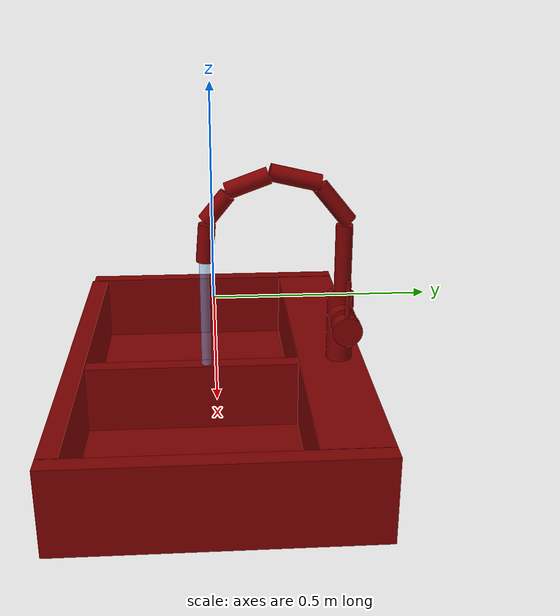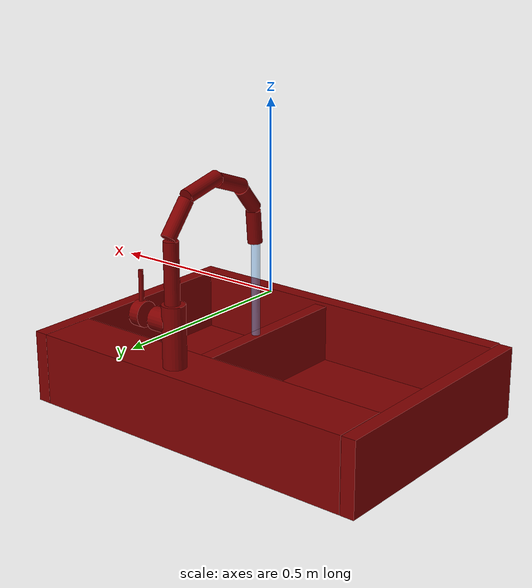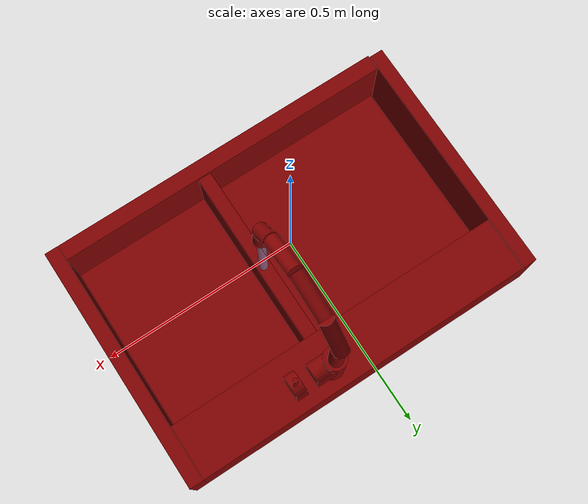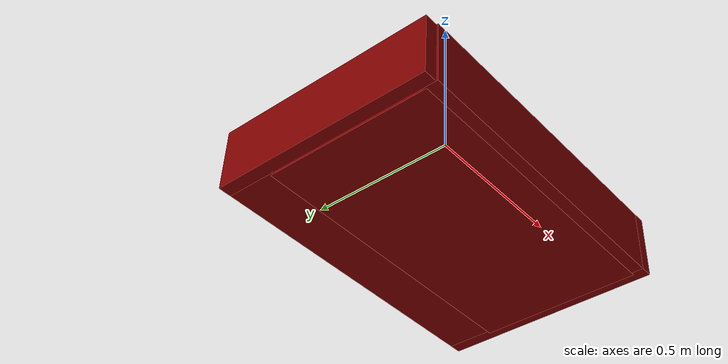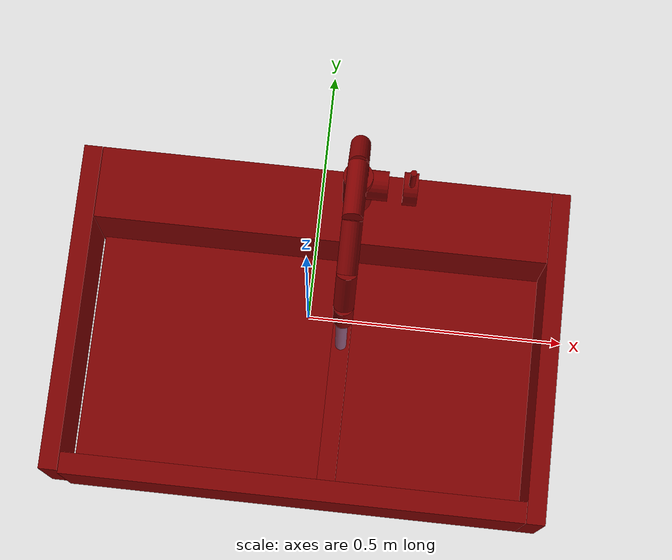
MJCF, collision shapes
<?xml version='1.0' encoding='UTF-8'?>
<mujoco model="model">
  <option timestep="0.002" gravity="0.0 0.0 -9.81"/>
  <compiler angle="radian"/>
  <asset>
    <mesh file="visuals/handle.obj" name="handle_vis"/>
    <mesh file="visuals/Body001.obj" name="Body001_vis"/>
    <mesh file="visuals/spout.obj" name="spout_vis"/>
    <texture file="visuals/T_BC001.png" name="Body001_material" type="2d"/>
    <material name="Body001_material" rgba="1 1 1 1.0" texture="Body001_material" shininess="0.228035569190979" specular="0.8"/>
    <texture file="visuals/T_BC001.png" name="handle_material" type="2d"/>
    <material name="handle_material" rgba="1 1 1 1.0" texture="handle_material" shininess="0.228035569190979" specular="0.8"/>
    <texture file="visuals/T_BC001.png" name="spout_material" type="2d"/>
    <material name="spout_material" rgba="1 1 1 1.0" texture="spout_material" shininess="0.228035569190979" specular="0.8"/>
  </asset>
  <default>
    <default class="visual">
      <geom conaffinity="0" contype="0" group="1" type="mesh"/>
    </default>
    <default class="collision">
      <geom group="0" rgba="0.5 0 0 0.5" solimp="0.998 0.998 0.001" solref="0.001 2"/>
    </default>
    <default class="spawn">
      <geom group="0" rgba="1 1 1 0.5" contype="0" conaffinity="0"/>
      <site group="0" rgba="1 1 1 0.5"/>
    </default>
    <default class="region">
      <geom group="1" conaffinity="0" contype="0" rgba="0 1 0 0"/>
    </default>
  </default>
  <worldbody>
    <body>
      <body name="object">
        <geom mesh="Body001_vis" type="mesh" solimp="0.998 0.998 0.001" solref="0.001 1" friction="0.95 0.3 0.1" class="visual" material="Body001_material"/>
        <geom type="box" pos="-0.49512535 0.00277162 -0.22844447" size="0.019095981493592262 0.3433080017566681 0.09792235493659973" quat="1.0 0.0 0.0 0.0" class="collision"/>
        <geom type="box" pos="0.49499223 -0.00008141 -0.22844448" size="0.019229060038924217 0.3459986448287964 0.09792245924472809" quat="1.0 0.0 0.0 0.0" class="collision"/>
        <geom type="box" pos="0.06663767 -0.05228325 -0.23323714" size="0.01861174777150154 0.2560826539993286 0.09312988072633743" quat="1.0 0.0 0.0 0.0" class="collision"/>
        <geom type="box" pos="0.00052798 0.27004288 -0.22844448" size="0.47443079948425293 0.07587803155183792 0.09792265295982361" quat="1.0 0.0 0.0 0.0" class="collision"/>
        <geom type="box" pos="0.00052798 -0.32402457 -0.22844448" size="0.47443121671676636 0.02185858227312565 0.09792274981737137" quat="1.0 0.0 0.0 0.0" class="collision"/>
        <geom type="box" pos="0.00903598 -0.05228325 -0.31280137" size="0.47789597511291504 0.25608471035957336 0.013566710986196995" quat="1.0 0.0 0.0 0.0" class="collision"/>
        <geom type="cylinder" pos="0.06846455 0.29048978 -0.04916907" size="0.030319422483444214 0.08116674423217773" quat="1.0 0.0 0.0 0.0" class="collision"/>
        <geom type="cylinder" pos="0.10383244 0.29048978 -0.01729725" size="0.03031948208808899 0.026350606232881546" quat="0.7071068286895752 -0.0 0.7071067690849304 0.0" class="collision"/>
        <body name="handle">
          <joint axis="1.0 0.0 0.0" pos="0.16602397 0.28931342 -0.01579874" limited="true" name="handle_temp_joint" type="hinge" range="-0.7853981633974483 0.7853981633974483" damping="0.5" frictionloss="1" armature="2"/>
          <joint axis="0.0 1.0 0.0" pos="0.16602397 0.28931342 -0.01579874" limited="true" name="handle_joint" type="hinge" range="0 0.5" damping="0.5" frictionloss="1" armature="2"/>
          <geom mesh="handle_vis" type="mesh" solimp="0.998 0.998 0.001" solref="0.001 1" friction="0.95 0.3 0.1" class="visual" material="handle_material"/>
          <geom type="cylinder" pos="0.17542005 0.28923248 -0.01596184" size="0.03340867534279823 0.014485578052699566" quat="0.7071068286895752 -0.0 0.7071067690849304 0.0" class="collision"/>
          <geom name="handle_main" type="cylinder" pos="0.17669702 0.28926976 0.05359236" size="0.006227125413715839 0.04342131316661835" quat="1.0 0.0 0.0 0.0" class="collision"/>
        </body>
        <body name="spout">
          <joint axis="0.0 0.0 1.0" pos="0.06750976 0.29330762 0.16373773" limited="true" name="spout_joint" range="-0.7853981633974483 0.7853981633974483" type="hinge" damping="10"/>
          <site type="cylinder" rgba="0.5 0.75 1 0.5" size="0.01151744183152914 0.21220138669013977" pos="0.06744872 -0.02004890 -0.09707112" name="water"/>
          <geom mesh="spout_vis" type="mesh" solimp="0.998 0.998 0.001" solref="0.001 1" friction="0.95 0.3 0.1" class="visual" material="spout_material"/>
          <geom type="cylinder" pos="0.06846455 0.29384326 0.11317538" size="0.019380977377295494 0.08024422079324722" quat="1.0 0.0 0.0 0.0" class="collision" name="spout_main"/>
          <geom type="cylinder" pos="0.06846455 0.27009921 0.24148520" size="0.019380977377295494 0.05237458273768425" quat="0.94241863489151 0.33443546295166016 -7.425959024402132e-17 -1.0411755019580105e-24" class="collision"/>
          <geom type="cylinder" pos="0.06846455 0.00961289 0.23700823" size="0.019380977377295494 0.03836783766746521" quat="0.94241863489151 -0.33443546295166016 -7.425958362657642e-17 2.1058400473437913e-23" class="collision"/>
          <geom type="cylinder" pos="0.06846455 -0.01559357 0.15699275" size="0.019380979239940643 0.04354899376630783" quat="0.9991522431373596 -0.041167572140693665 9.14103729170305e-18 -6.345926471025749e-25" class="collision"/>
          <geom type="cylinder" pos="0.06846455 0.18169849 0.30201467" size="0.019380977377295494 0.05733475089073181" quat="0.7834377288818359 0.6214703321456909 -1.740260556822788e-16 3.604969907408587e-17" class="collision"/>
          <geom type="cylinder" pos="0.06846455 0.07813357 0.29093822" size="0.019380977377295494 0.049684420228004456" quat="0.5714645385742188 0.8206267356872559 -1.2698036348411727e-16 -5.526257353101829e-17" class="collision"/>
        </body>
        <geom class="region" name="reg_basin_left" type="box" pos="-0.21517065 -0.05111445499999999 -0.2151284" size="0.25182275 0.24243153499999998 0.08350127"/>
        <geom class="region" name="reg_basin_right" type="box" pos="0.28159826 -0.054265594999999986 -0.2151284" size="0.18733766000000002 0.24073462499999998 0.08350127"/>
        <geom class="region" name="reg_main" type="box" pos="-1.3000000004259604e-07 -1.0000000000287557e-07 -0.22844396" size="0.51522149 0.34708218 0.0989234"/>
      </body>
    </body>
  </worldbody>
  <actuator>
    <motor name="handle_joint_actuator" joint="handle_joint" gear="10"/>
    <motor name="handle_temp_joint_actuator" joint="handle_temp_joint" gear="10"/>
    <motor name="spout_joint_actuator" joint="spout_joint" gear="10"/>
  </actuator>
</mujoco>
